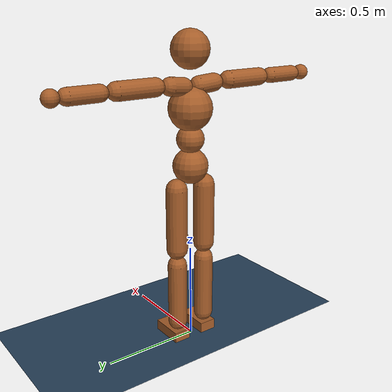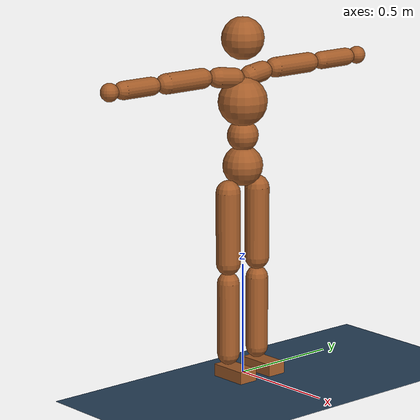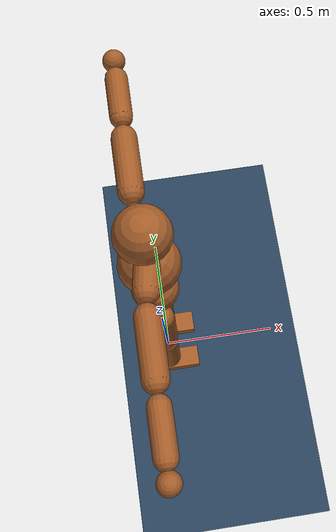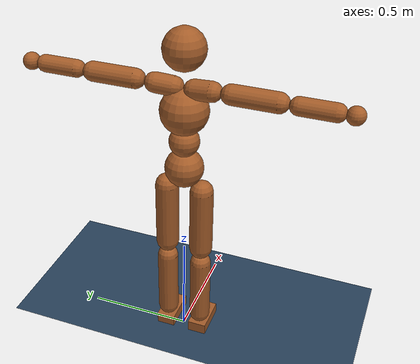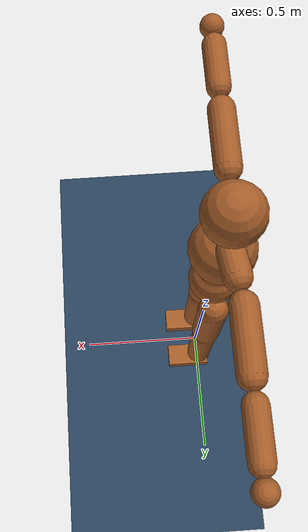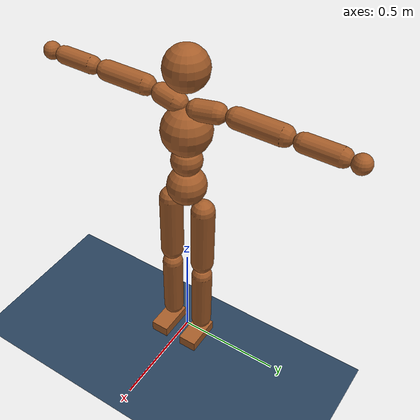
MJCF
<mujoco model="humanoid">
  <!-- Global stats / camera extent -->
  <statistic extent="2" center="0 0 1"/>

  <!-- Defaults: motors + body/joint classes -->
  <default>
    <!-- All motors: [-1, 1] torque-like control -->
    <motor ctrlrange="-1 1" ctrllimited="true"/>

    <default class="body">
      <!-- Geom defaults -->
      <geom type="capsule"
            condim="1"
            friction=".7"
            solimp=".9 .99 .003"
            solref=".015 1"
            material="body"
            group="1"/>

      <!-- Global hinge joint default (soft, like OG humanoid) -->
      <joint type="hinge"
             damping=".2"
             stiffness="1"
             armature=".01"
             limited="true"
             solimplimit="0 .99 .01"/>

      <!-- Bigger torso/hip joints -->
      <default class="joint_big">
        <joint damping="5" stiffness="10"/>

        <!-- Slightly stiffer big joints -->
        <default class="joint_big_stiff">
          <joint stiffness="20"/>
        </default>

        <!-- Hip orientation / ranges (taken from OG humanoid) -->
        <default class="hip_x">
          <joint range="-30 10"/>
        </default>
        <default class="hip_z">
          <joint range="-60 35"/>
        </default>
        <default class="hip_y">
          <joint axis="0 1 0" range="-150 20"/>
        </default>
      </default>

      <!-- Knee joint -->
      <default class="knee">
        <!-- axis sign chosen to match your leg layout -->
        <joint pos="0 0 .02" axis="0 1 0" range="0 160"/>
      </default>

      <!-- Ankle joints -->
      <default class="ankle">
        <joint range="-50 50"/>
        <default class="ankle_y">
          <joint pos="0 0 .08" axis="0 1 0" stiffness="6"/>
        </default>
        <default class="ankle_x">
          <joint pos="0 0 .04" stiffness="3"/>
        </default>
      </default>

      <!-- Shoulder joint -->
      <default class="shoulder">
        <joint range="-85 60"/>
      </default>

      <!-- Elbow joint (no spring, only damping from global default) -->
      <default class="elbow">
        <joint range="-160 0" stiffness="0"/>
      </default>

    </default> <!-- end class="body" -->
  </default>

  <!-- Visuals -->
  <visual>
    <map force="0.1" zfar="30"/>
    <rgba haze="0.15 0.25 0.35 1"/>
    <global offwidth="2560" offheight="1440" elevation="-20" azimuth="120"/>
  </visual>

  <!-- Assets -->
  <asset>
    <texture type="skybox" builtin="gradient"
             rgb1=".3 .5 .7" rgb2="0 0 0"
             width="32" height="512"/>
    <texture name="body" type="cube" builtin="flat" mark="cross"
             width="128" height="128"
             rgb1="0.8 0.6 0.4" rgb2="0.8 0.6 0.4"
             markrgb="1 1 1"/>
    <material name="body" texture="body" texuniform="true" rgba="0.8 0.6 .4 1"/>

    <texture name="grid" type="2d" builtin="checker"
             width="512" height="512"
             rgb1=".1 .2 .3" rgb2=".2 .3 .4"/>
    <material name="grid" texture="grid" texrepeat="1 1" texuniform="true" reflectance=".2"/>
  </asset>

  <!-- World / robot -->
  <worldbody>
    <light name="spotlight" mode="targetbodycom" target="pelvis"
           diffuse=".8 .8 .8" specular="0.3 0.3 0.3"
           pos="0 -6 4" cutoff="30"/>
    <light name="top" pos="0 0 2" mode="trackcom"/>

    <geom name="floor" pos="0 0 0" size="0 0 .25"
          type="plane" material="grid" condim="3"/>

    <!-- Pelvis / base -->
    <body name="pelvis" pos="0 0 0.881" childclass="body">
      <freejoint name="root"/>

      <geom name="pelvis"      type="sphere" pos="0 0 0.07"  size=".09" density="2226"/>
      <geom name="upper_waist" type="sphere" pos="0 0 0.205" size="0.07" density="2226"/>

      <!-- Torso + spine -->
      <body name="torso" pos="0 0 0.236151">
        <camera name="back" pos="-3 0 1"  xyaxes="0 -1 0 1 0 2" mode="trackcom"/>
        <camera name="side" pos="0 -2.5 1" xyaxes="1 0 0 0 1 2" mode="trackcom"/>

        <!-- Spine joints: big & stiff like OG humanoid -->
        <joint name="abdomen_x" type="hinge" axis="1 0 0"
               range="-35 35" class="joint_big"/>
        <joint name="abdomen_y" type="hinge" axis="0 1 0"
               range="-75 30" class="joint_big"/>
        <joint name="abdomen_z" type="hinge" axis="0 0 1"
               range="-45 45" class="joint_big_stiff"/>

        <geom name="torso" type="sphere" pos="0 0 0.12" size="0.11" density="1794"/>

        <geom name="right_clavicle" type="capsule"
              fromto="-0.0060125 -0.0457775 0.2287955 -0.016835 -0.128177 0.2376182"
              size=".045" density="1100"/>
        <geom name="left_clavicle" type="capsule"
              fromto="-0.0060125 0.0457775 0.2287955 -0.016835 0.128177 0.2376182"
              size=".045" density="1100"/>

        <!-- Head / neck -->
        <body name="head" pos="0 0 0.223894">
          <joint name="neck_x" type="hinge" axis="1 0 0" range="-50 50"/>
          <joint name="neck_y" type="hinge" axis="0 1 0" range="-40 60"/>
          <joint name="neck_z" type="hinge" axis="0 0 1" range="-45 45"/>

          <geom name="head" type="sphere" pos="0 0 0.175" size="0.095" density="1081"/>
          <camera name="egocentric" pos=".09 0 0" xyaxes="0 -1 0 .1 0 1" fovy="80"/>
        </body>

        <!-- Right arm -->
        <body name="right_upper_arm" pos="-0.02405 -0.18311 0.24350">
          <joint name="right_shoulder_x" type="hinge" axis="1 0 0"
                 range="-85 60" class="shoulder"/>
          <joint name="right_shoulder_y" type="hinge" axis="0 1 0"
                 range="-85 60" class="shoulder"/>
          <joint name="right_shoulder_z" type="hinge" axis="0 0 1"
                 range="-85 60" class="shoulder"/>

          <geom name="right_upper_arm" type="capsule"
                fromto="0 -0.03 0 0 -0.23 0"
                size=".045" density="982"/>

          <body name="right_lower_arm" pos="0 -0.274788 0">
            <joint name="right_elbow" type="hinge" axis="0 0 1" class="elbow"/>

            <geom name="right_lower_arm" type="capsule"
                  fromto="0 -0.035 0 0 -0.1875 0"
                  size="0.04" density="1056"/>

            <body name="right_hand" pos="0 -0.258947 0">
              <geom name="right_hand" type="sphere" size=".04" density="1865"/>
            </body>
          </body>
        </body>

        <!-- Left arm -->
        <body name="left_upper_arm" pos="-0.02405 0.18311 0.24350">
          <joint name="left_shoulder_x" type="hinge" axis="1 0 0"
                 range="-85 60" class="shoulder"/>
          <joint name="left_shoulder_y" type="hinge" axis="0 1 0"
                 range="-85 60" class="shoulder"/>
          <joint name="left_shoulder_z" type="hinge" axis="0 0 1"
                 range="-85 60" class="shoulder"/>

          <geom name="left_upper_arm" type="capsule"
                fromto="0 0.03 0 0 0.23 0"
                size="0.045" density="982"/>

          <body name="left_lower_arm" pos="0 0.274788 0">
            <joint name="left_elbow" type="hinge" axis="0 0 1" class="elbow"/>

            <geom name="left_lower_arm" type="capsule"
                  fromto="0 0.035 0 0 0.1875 0"
                  size="0.04" density="1056"/>

            <body name="left_hand" pos="0 0.258947 0">
              <geom name="left_hand" type="sphere" size=".04" density="1865"/>
            </body>
          </body>
        </body>
      </body> <!-- end torso -->

      <!-- Right leg -->
      <body name="right_thigh" pos="0 -0.084887 0">
        <joint name="right_hip_x" type="hinge" axis="1 0 0" class="hip_x"/>
        <joint name="right_hip_y" type="hinge" axis="0 1 0" class="hip_y"/>
        <joint name="right_hip_z" type="hinge" axis="0 0 1" class="hip_z"/>

        <geom name="right_thigh" type="capsule"
              fromto="0 0 -0.04 0 0 -0.36"
              size="0.055" density="1269"/>

        <body name="right_shin" pos="0 0 -0.421546">
          <joint name="right_knee" type="hinge" class="knee"/>

          <geom name="right_shin" type="capsule"
                fromto="0 0 -0.03 0 0 -0.355"
                size=".05" density="1014"/>

          <body name="right_foot" pos="0 0 -0.409870">
            <joint name="right_ankle_x" type="hinge" axis="1 0 0" class="ankle_x"/>
            <joint name="right_ankle_y" type="hinge" axis="0 1 0" class="ankle_y"/>
            <!-- z-ankle: soft default joint -->
            <joint name="right_ankle_z" type="hinge" axis="0 0 1" range="-40 40"/>

            <geom name="right_foot" type="box"
                  pos="0.045 0 -0.0225"
                  size="0.0885 0.045 0.0275"
                  density="1141"/>
          </body>
        </body>
      </body>

      <!-- Left leg -->
      <body name="left_thigh" pos="0 0.084887 0">
        <joint name="left_hip_x" type="hinge" axis="1 0 0" class="hip_x"/>
        <joint name="left_hip_y" type="hinge" axis="0 1 0" class="hip_y"/>
        <joint name="left_hip_z" type="hinge" axis="0 0 1" class="hip_z"/>

        <geom name="left_thigh" type="capsule"
              fromto="0 0 -0.04 0 0 -0.36"
              size=".055" density="1269"/>

        <body name="left_shin" pos="0 0 -0.421546">
          <joint name="left_knee" type="hinge" class="knee"/>

          <geom name="left_shin" type="capsule"
                fromto="0 0 -0.03 0 0 -0.355"
                size=".05" density="1014"/>

          <body name="left_foot" pos="0 0 -0.409870">
            <joint name="left_ankle_x" type="hinge" axis="1 0 0" class="ankle_x"/>
            <joint name="left_ankle_y" type="hinge" axis="0 1 0" class="ankle_y"/>
            <joint name="left_ankle_z" type="hinge" axis="0 0 1" range="-40 40"/>

            <geom name="left_foot" type="box"
                  pos="0.045 0 -0.0225"
                  size="0.0885 0.045 0.0275"
                  density="1141"/>
          </body>
        </body>
      </body>

    </body> <!-- end pelvis -->
  </worldbody>

  <!-- Actuators (kept as you had them) -->
  <actuator>
    <motor name="abdomen_x"       gear="200" joint="abdomen_x"/>
    <motor name="abdomen_y"       gear="200" joint="abdomen_y"/>
    <motor name="abdomen_z"       gear="200" joint="abdomen_z"/>

    <motor name="neck_x"          gear="50"  joint="neck_x"/>
    <motor name="neck_y"          gear="50"  joint="neck_y"/>
    <motor name="neck_z"          gear="50"  joint="neck_z"/>

    <motor name="right_shoulder_x" gear="100" joint="right_shoulder_x"/>
    <motor name="right_shoulder_y" gear="100" joint="right_shoulder_y"/>
    <motor name="right_shoulder_z" gear="100" joint="right_shoulder_z"/>
    <motor name="right_elbow"      gear="70"  joint="right_elbow"/>

    <motor name="left_shoulder_x"  gear="100" joint="left_shoulder_x"/>
    <motor name="left_shoulder_y"  gear="100" joint="left_shoulder_y"/>
    <motor name="left_shoulder_z"  gear="100" joint="left_shoulder_z"/>
    <motor name="left_elbow"       gear="70"  joint="left_elbow"/>

    <motor name="right_hip_x"      gear="200" joint="right_hip_x"/>
    <motor name="right_hip_z"      gear="200" joint="right_hip_z"/>
    <motor name="right_hip_y"      gear="200" joint="right_hip_y"/>
    <motor name="right_knee"       gear="150" joint="right_knee"/>
    <motor name="right_ankle_x"    gear="90"  joint="right_ankle_x"/>
    <motor name="right_ankle_y"    gear="90"  joint="right_ankle_y"/>
    <motor name="right_ankle_z"    gear="90"  joint="right_ankle_z"/>

    <motor name="left_hip_x"       gear="200" joint="left_hip_x"/>
    <motor name="left_hip_z"       gear="200" joint="left_hip_z"/>
    <motor name="left_hip_y"       gear="200" joint="left_hip_y"/>
    <motor name="left_knee"        gear="150" joint="left_knee"/>
    <motor name="left_ankle_x"     gear="90"  joint="left_ankle_x"/>
    <motor name="left_ankle_y"     gear="90"  joint="left_ankle_y"/>
    <motor name="left_ankle_z"     gear="90"  joint="left_ankle_z"/>
  </actuator>

  <keyframe>
    <key name="arms"
        qpos="0 0 0.880749 1 0 0 0
              0 0 0
              0 0 0
              1.55281651 -0.310888141 -0.080201156 0.240463093
              -1.55281651  0.310888141  0.080201156 -0.240463093
              0 0 0 0
              0 0 0 0
              0 0 0
              0 0 0"/>
  </keyframe>

</mujoco>
